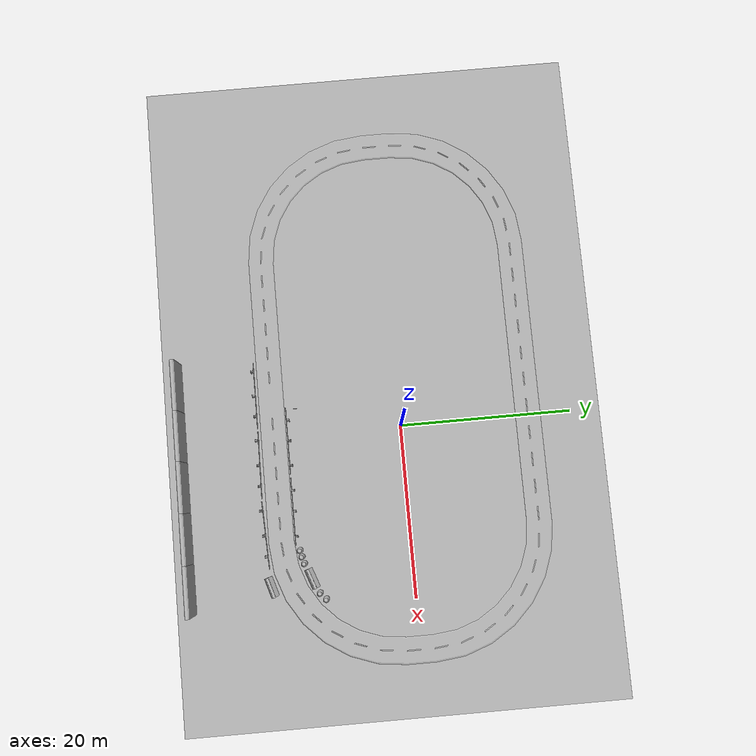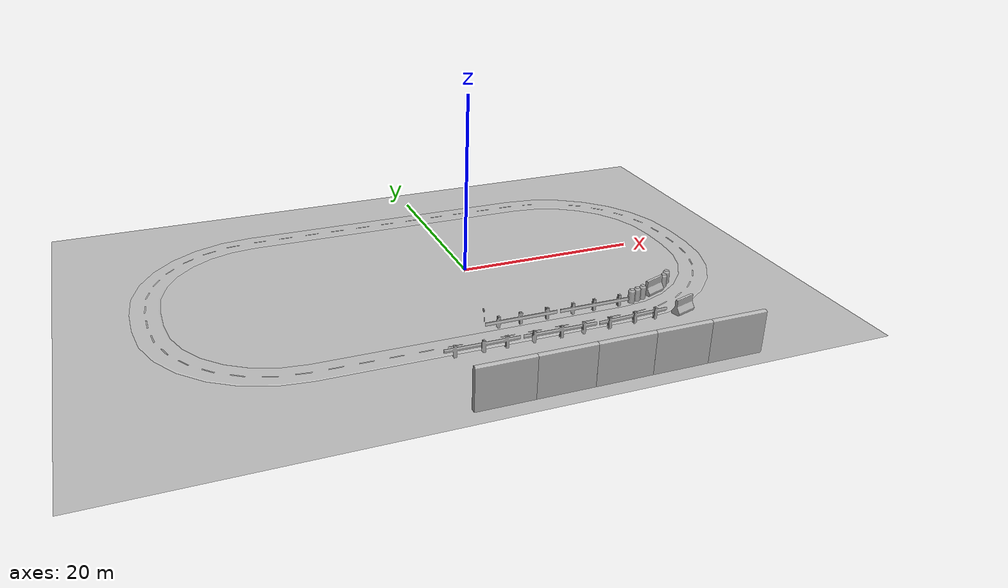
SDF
<sdf version="1.7">
 <world name="default">
  <model name="aws_robomaker_racetrack_CrashworthBucket_01_18">
   <frame name="aws_CrashworthBucket_01::__model__" attached_to="aws_CrashworthBucket_01::body">
    <pose relative_to="__model__">0 0 0 0 -0 0</pose>
   </frame>
   <link name="aws_CrashworthBucket_01::body">
    <pose relative_to="aws_CrashworthBucket_01::__model__">0 0 0 0 -0 0</pose>
    <inertial>
     <mass>5</mass>
     <inertia><ixx>1</ixx><ixy>0</ixy><ixz>0</ixz><iyy>1</iyy><iyz>0</iyz><izz>1</izz></inertia>
    </inertial>
    <visual name="visual">
     <geometry>
      <mesh>
       <uri>file://models/aws_robomaker_racetrack_CrashworthBucket_01/meshes/aws_CrashworthBucket_01_visual.DAE</uri>
      </mesh>
     </geometry>
     <material><shader type="pixel"><normal_map>__default__</normal_map></shader></material>
     <meta><layer>0</layer></meta>
    </visual>
    <collision name="collision_0">
     <geometry>
      <mesh>
       <uri>file://models/aws_robomaker_racetrack_CrashworthBucket_01/meshes/aws_CrashworthBucket_01_collision.DAE</uri>
       <scale>1 1 1</scale>
      </mesh>
     </geometry>
     <surface>
      <friction>
       <ode><mu>1</mu><mu2>1</mu2><fdir1>0 0 0</fdir1><slip1>0</slip1><slip2>0</slip2></ode>
       <torsional>
        <coefficient>1</coefficient>
        <patch_radius>0</patch_radius>
        <surface_radius>0</surface_radius>
        <use_patch_radius>1</use_patch_radius>
        <ode><slip>0</slip></ode>
       </torsional>
      </friction>
      <bounce><restitution_coefficient>0</restitution_coefficient><threshold>1e+06</threshold></bounce>
      <contact>
       <collide_without_contact>0</collide_without_contact>
       <collide_without_contact_bitmask>1</collide_without_contact_bitmask>
       <collide_bitmask>1</collide_bitmask>
       <ode>
        <soft_cfm>0</soft_cfm>
        <soft_erp>0.2</soft_erp>
        <kp>1e+13</kp>
        <kd>1</kd>
        <max_vel>0.01</max_vel>
        <min_depth>0</min_depth>
       </ode>
       <bullet>
        <split_impulse>1</split_impulse>
        <split_impulse_penetration_threshold>-0.01</split_impulse_penetration_threshold>
        <soft_cfm>0</soft_cfm>
        <soft_erp>0.2</soft_erp>
        <kp>1e+13</kp>
        <kd>1</kd>
       </bullet>
      </contact>
     </surface>
    </collision>
   </link>
   <static>1</static>
   <pose>19.1471 -10.2467 0.054 0 -0 0</pose>
  </model>
  <model name="aws_robomaker_racetrack_CrashworthBucket_01_19">
   <frame name="aws_CrashworthBucket_01::__model__" attached_to="aws_CrashworthBucket_01::body">
    <pose relative_to="__model__">0 0 0 0 -0 0</pose>
   </frame>
   <link name="aws_CrashworthBucket_01::body">
    <pose relative_to="aws_CrashworthBucket_01::__model__">0 0 0 0 -0 0</pose>
    <inertial>
     <mass>5</mass>
     <inertia><ixx>1</ixx><ixy>0</ixy><ixz>0</ixz><iyy>1</iyy><iyz>0</iyz><izz>1</izz></inertia>
    </inertial>
    <visual name="visual">
     <geometry>
      <mesh>
       <uri>file://models/aws_robomaker_racetrack_CrashworthBucket_01/meshes/aws_CrashworthBucket_01_visual.DAE</uri>
      </mesh>
     </geometry>
     <material><shader type="pixel"><normal_map>__default__</normal_map></shader></material>
     <meta><layer>0</layer></meta>
    </visual>
    <collision name="collision_0">
     <geometry>
      <mesh>
       <uri>file://models/aws_robomaker_racetrack_CrashworthBucket_01/meshes/aws_CrashworthBucket_01_collision.DAE</uri>
       <scale>1 1 1</scale>
      </mesh>
     </geometry>
     <surface>
      <friction>
       <ode><mu>1</mu><mu2>1</mu2><fdir1>0 0 0</fdir1><slip1>0</slip1><slip2>0</slip2></ode>
       <torsional>
        <coefficient>1</coefficient>
        <patch_radius>0</patch_radius>
        <surface_radius>0</surface_radius>
        <use_patch_radius>1</use_patch_radius>
        <ode><slip>0</slip></ode>
       </torsional>
      </friction>
      <bounce><restitution_coefficient>0</restitution_coefficient><threshold>1e+06</threshold></bounce>
      <contact>
       <collide_without_contact>0</collide_without_contact>
       <collide_without_contact_bitmask>1</collide_without_contact_bitmask>
       <collide_bitmask>1</collide_bitmask>
       <ode>
        <soft_cfm>0</soft_cfm>
        <soft_erp>0.2</soft_erp>
        <kp>1e+13</kp>
        <kd>1</kd>
        <max_vel>0.01</max_vel>
        <min_depth>0</min_depth>
       </ode>
       <bullet>
        <split_impulse>1</split_impulse>
        <split_impulse_penetration_threshold>-0.01</split_impulse_penetration_threshold>
        <soft_cfm>0</soft_cfm>
        <soft_erp>0.2</soft_erp>
        <kp>1e+13</kp>
        <kd>1</kd>
       </bullet>
      </contact>
     </surface>
    </collision>
   </link>
   <static>1</static>
   <pose>18.3999 -10.9106 0.054 0 -0 0</pose>
  </model>
  <model name="aws_robomaker_racetrack_CrashworthBucket_01_22">
   <frame name="aws_CrashworthBucket_01::__model__" attached_to="aws_CrashworthBucket_01::body">
    <pose relative_to="__model__">0 0 0 0 -0 0</pose>
   </frame>
   <link name="aws_CrashworthBucket_01::body">
    <pose relative_to="aws_CrashworthBucket_01::__model__">0 0 0 0 -0 0</pose>
    <inertial>
     <mass>5</mass>
     <inertia><ixx>1</ixx><ixy>0</ixy><ixz>0</ixz><iyy>1</iyy><iyz>0</iyz><izz>1</izz></inertia>
    </inertial>
    <visual name="visual">
     <geometry>
      <mesh>
       <uri>file://models/aws_robomaker_racetrack_CrashworthBucket_01/meshes/aws_CrashworthBucket_01_visual.DAE</uri>
      </mesh>
     </geometry>
     <material><shader type="pixel"><normal_map>__default__</normal_map></shader></material>
     <meta><layer>0</layer></meta>
    </visual>
    <collision name="collision_0">
     <geometry>
      <mesh>
       <uri>file://models/aws_robomaker_racetrack_CrashworthBucket_01/meshes/aws_CrashworthBucket_01_collision.DAE</uri>
       <scale>1 1 1</scale>
      </mesh>
     </geometry>
     <surface>
      <friction>
       <ode><mu>1</mu><mu2>1</mu2><fdir1>0 0 0</fdir1><slip1>0</slip1><slip2>0</slip2></ode>
       <torsional>
        <coefficient>1</coefficient>
        <patch_radius>0</patch_radius>
        <surface_radius>0</surface_radius>
        <use_patch_radius>1</use_patch_radius>
        <ode><slip>0</slip></ode>
       </torsional>
      </friction>
      <bounce><restitution_coefficient>0</restitution_coefficient><threshold>1e+06</threshold></bounce>
      <contact>
       <collide_without_contact>0</collide_without_contact>
       <collide_without_contact_bitmask>1</collide_without_contact_bitmask>
       <collide_bitmask>1</collide_bitmask>
       <ode>
        <soft_cfm>0</soft_cfm>
        <soft_erp>0.2</soft_erp>
        <kp>1e+13</kp>
        <kd>1</kd>
        <max_vel>0.01</max_vel>
        <min_depth>0</min_depth>
       </ode>
       <bullet>
        <split_impulse>1</split_impulse>
        <split_impulse_penetration_threshold>-0.01</split_impulse_penetration_threshold>
        <soft_cfm>0</soft_cfm>
        <soft_erp>0.2</soft_erp>
        <kp>1e+13</kp>
        <kd>1</kd>
       </bullet>
      </contact>
     </surface>
    </collision>
   </link>
   <static>1</static>
   <pose>14.1427 -12.6734 0.054 0 -0 0</pose>
  </model>
  <model name="aws_robomaker_racetrack_CrashworthBucket_01_23">
   <frame name="aws_CrashworthBucket_01::__model__" attached_to="aws_CrashworthBucket_01::body">
    <pose relative_to="__model__">0 0 0 0 -0 0</pose>
   </frame>
   <link name="aws_CrashworthBucket_01::body">
    <pose relative_to="aws_CrashworthBucket_01::__model__">0 0 0 0 -0 0</pose>
    <inertial>
     <mass>5</mass>
     <inertia><ixx>1</ixx><ixy>0</ixy><ixz>0</ixz><iyy>1</iyy><iyz>0</iyz><izz>1</izz></inertia>
    </inertial>
    <visual name="visual">
     <geometry>
      <mesh>
       <uri>file://models/aws_robomaker_racetrack_CrashworthBucket_01/meshes/aws_CrashworthBucket_01_visual.DAE</uri>
      </mesh>
     </geometry>
     <material><shader type="pixel"><normal_map>__default__</normal_map></shader></material>
     <meta><layer>0</layer></meta>
    </visual>
    <collision name="collision_0">
     <geometry>
      <mesh>
       <uri>file://models/aws_robomaker_racetrack_CrashworthBucket_01/meshes/aws_CrashworthBucket_01_collision.DAE</uri>
       <scale>1 1 1</scale>
      </mesh>
     </geometry>
     <surface>
      <friction>
       <ode><mu>1</mu><mu2>1</mu2><fdir1>0 0 0</fdir1><slip1>0</slip1><slip2>0</slip2></ode>
       <torsional>
        <coefficient>1</coefficient>
        <patch_radius>0</patch_radius>
        <surface_radius>0</surface_radius>
        <use_patch_radius>1</use_patch_radius>
        <ode><slip>0</slip></ode>
       </torsional>
      </friction>
      <bounce><restitution_coefficient>0</restitution_coefficient><threshold>1e+06</threshold></bounce>
      <contact>
       <collide_without_contact>0</collide_without_contact>
       <collide_without_contact_bitmask>1</collide_without_contact_bitmask>
       <collide_bitmask>1</collide_bitmask>
       <ode>
        <soft_cfm>0</soft_cfm>
        <soft_erp>0.2</soft_erp>
        <kp>1e+13</kp>
        <kd>1</kd>
        <max_vel>0.01</max_vel>
        <min_depth>0</min_depth>
       </ode>
       <bullet>
        <split_impulse>1</split_impulse>
        <split_impulse_penetration_threshold>-0.01</split_impulse_penetration_threshold>
        <soft_cfm>0</soft_cfm>
        <soft_erp>0.2</soft_erp>
        <kp>1e+13</kp>
        <kd>1</kd>
       </bullet>
      </contact>
     </surface>
    </collision>
   </link>
   <static>1</static>
   <pose>14.9254 -12.4456 0.054 0 -0 0</pose>
  </model>
  <model name="aws_robomaker_racetrack_CrashworthBucket_01_25">
   <frame name="aws_CrashworthBucket_01::__model__" attached_to="aws_CrashworthBucket_01::body">
    <pose relative_to="__model__">0 0 0 0 -0 0</pose>
   </frame>
   <link name="aws_CrashworthBucket_01::body">
    <pose relative_to="aws_CrashworthBucket_01::__model__">0 0 0 0 -0 0</pose>
    <inertial>
     <mass>5</mass>
     <inertia><ixx>1</ixx><ixy>0</ixy><ixz>0</ixz><iyy>1</iyy><iyz>0</iyz><izz>1</izz></inertia>
    </inertial>
    <visual name="visual">
     <geometry>
      <mesh>
       <uri>file://models/aws_robomaker_racetrack_CrashworthBucket_01/meshes/aws_CrashworthBucket_01_visual.DAE</uri>
      </mesh>
     </geometry>
     <material><shader type="pixel"><normal_map>__default__</normal_map></shader></material>
     <meta><layer>0</layer></meta>
    </visual>
    <collision name="collision_0">
     <geometry>
      <mesh>
       <uri>file://models/aws_robomaker_racetrack_CrashworthBucket_01/meshes/aws_CrashworthBucket_01_collision.DAE</uri>
       <scale>1 1 1</scale>
      </mesh>
     </geometry>
     <surface>
      <friction>
       <ode><mu>1</mu><mu2>1</mu2><fdir1>0 0 0</fdir1><slip1>0</slip1><slip2>0</slip2></ode>
       <torsional>
        <coefficient>1</coefficient>
        <patch_radius>0</patch_radius>
        <surface_radius>0</surface_radius>
        <use_patch_radius>1</use_patch_radius>
        <ode><slip>0</slip></ode>
       </torsional>
      </friction>
      <bounce><restitution_coefficient>0</restitution_coefficient><threshold>1e+06</threshold></bounce>
      <contact>
       <collide_without_contact>0</collide_without_contact>
       <collide_without_contact_bitmask>1</collide_without_contact_bitmask>
       <collide_bitmask>1</collide_bitmask>
       <ode>
        <soft_cfm>0</soft_cfm>
        <soft_erp>0.2</soft_erp>
        <kp>1e+13</kp>
        <kd>1</kd>
        <max_vel>0.01</max_vel>
        <min_depth>0</min_depth>
       </ode>
       <bullet>
        <split_impulse>1</split_impulse>
        <split_impulse_penetration_threshold>-0.01</split_impulse_penetration_threshold>
        <soft_cfm>0</soft_cfm>
        <soft_erp>0.2</soft_erp>
        <kp>1e+13</kp>
        <kd>1</kd>
       </bullet>
      </contact>
     </surface>
    </collision>
   </link>
   <static>1</static>
   <pose>13.3868 -12.8508 0.054 0 -0 0</pose>
  </model>
  <model name="aws_robomaker_racetrack_Fence_01_05">
   <frame name="aws_Fence_01::__model__" attached_to="aws_Fence_01::body">
    <pose relative_to="__model__">0 0 0 0 -0 0</pose>
   </frame>
   <link name="aws_Fence_01::body">
    <pose relative_to="aws_Fence_01::__model__">0 0 0 0 -0 0</pose>
    <inertial>
     <mass>5</mass>
     <inertia><ixx>1</ixx><ixy>0</ixy><ixz>0</ixz><iyy>1</iyy><iyz>0</iyz><izz>1</izz></inertia>
    </inertial>
    <visual name="visual">
     <geometry>
      <mesh><uri>file://models/aws_robomaker_racetrack_Fence_01/meshes/aws_Fence_01_visual.DAE</uri></mesh>
     </geometry>
     <material><shader type="pixel"><normal_map>__default__</normal_map></shader></material>
     <meta><layer>0</layer></meta>
    </visual>
    <collision name="collision_0">
     <geometry>
      <mesh>
       <uri>file://models/aws_robomaker_racetrack_Fence_01/meshes/aws_Fence_01_collision.DAE</uri>
       <scale>1 1 1</scale>
      </mesh>
     </geometry>
     <surface>
      <friction>
       <ode><mu>1</mu><mu2>1</mu2><fdir1>0 0 0</fdir1><slip1>0</slip1><slip2>0</slip2></ode>
       <torsional>
        <coefficient>1</coefficient>
        <patch_radius>0</patch_radius>
        <surface_radius>0</surface_radius>
        <use_patch_radius>1</use_patch_radius>
        <ode><slip>0</slip></ode>
       </torsional>
      </friction>
      <bounce><restitution_coefficient>0</restitution_coefficient><threshold>1e+06</threshold></bounce>
      <contact>
       <collide_without_contact>0</collide_without_contact>
       <collide_without_contact_bitmask>1</collide_without_contact_bitmask>
       <collide_bitmask>1</collide_bitmask>
       <ode>
        <soft_cfm>0</soft_cfm>
        <soft_erp>0.2</soft_erp>
        <kp>1e+13</kp>
        <kd>1</kd>
        <max_vel>0.01</max_vel>
        <min_depth>0</min_depth>
       </ode>
       <bullet>
        <split_impulse>1</split_impulse>
        <split_impulse_penetration_threshold>-0.01</split_impulse_penetration_threshold>
        <soft_cfm>0</soft_cfm>
        <soft_erp>0.2</soft_erp>
        <kp>1e+13</kp>
        <kd>1</kd>
       </bullet>
      </contact>
     </surface>
    </collision>
   </link>
   <static>1</static>
   <pose>-4.88088 -16.8495 0.054 0 0 -1.57272</pose>
  </model>
  <model name="aws_robomaker_racetrack_Fence_01_06">
   <frame name="aws_Fence_01::__model__" attached_to="aws_Fence_01::body">
    <pose relative_to="__model__">0 0 0 0 -0 0</pose>
   </frame>
   <link name="aws_Fence_01::body">
    <pose relative_to="aws_Fence_01::__model__">0 0 0 0 -0 0</pose>
    <inertial>
     <mass>5</mass>
     <inertia><ixx>1</ixx><ixy>0</ixy><ixz>0</ixz><iyy>1</iyy><iyz>0</iyz><izz>1</izz></inertia>
    </inertial>
    <visual name="visual">
     <geometry>
      <mesh><uri>file://models/aws_robomaker_racetrack_Fence_01/meshes/aws_Fence_01_visual.DAE</uri></mesh>
     </geometry>
     <material><shader type="pixel"><normal_map>__default__</normal_map></shader></material>
     <meta><layer>0</layer></meta>
    </visual>
    <collision name="collision_0">
     <geometry>
      <mesh>
       <uri>file://models/aws_robomaker_racetrack_Fence_01/meshes/aws_Fence_01_collision.DAE</uri>
       <scale>1 1 1</scale>
      </mesh>
     </geometry>
     <surface>
      <friction>
       <ode><mu>1</mu><mu2>1</mu2><fdir1>0 0 0</fdir1><slip1>0</slip1><slip2>0</slip2></ode>
       <torsional>
        <coefficient>1</coefficient>
        <patch_radius>0</patch_radius>
        <surface_radius>0</surface_radius>
        <use_patch_radius>1</use_patch_radius>
        <ode><slip>0</slip></ode>
       </torsional>
      </friction>
      <bounce><restitution_coefficient>0</restitution_coefficient><threshold>1e+06</threshold></bounce>
      <contact>
       <collide_without_contact>0</collide_without_contact>
       <collide_without_contact_bitmask>1</collide_without_contact_bitmask>
       <collide_bitmask>1</collide_bitmask>
       <ode>
        <soft_cfm>0</soft_cfm>
        <soft_erp>0.2</soft_erp>
        <kp>1e+13</kp>
        <kd>1</kd>
        <max_vel>0.01</max_vel>
        <min_depth>0</min_depth>
       </ode>
       <bullet>
        <split_impulse>1</split_impulse>
        <split_impulse_penetration_threshold>-0.01</split_impulse_penetration_threshold>
        <soft_cfm>0</soft_cfm>
        <soft_erp>0.2</soft_erp>
        <kp>1e+13</kp>
        <kd>1</kd>
       </bullet>
      </contact>
     </surface>
    </collision>
   </link>
   <static>1</static>
   <pose>3.24763 -16.8996 0.054 0 0 -1.58165</pose>
  </model>
  <model name="aws_robomaker_racetrack_Fence_01_07">
   <frame name="aws_Fence_01::__model__" attached_to="aws_Fence_01::body">
    <pose relative_to="__model__">0 0 0 0 -0 0</pose>
   </frame>
   <link name="aws_Fence_01::body">
    <pose relative_to="aws_Fence_01::__model__">0 0 0 0 -0 0</pose>
    <inertial>
     <mass>5</mass>
     <inertia><ixx>1</ixx><ixy>0</ixy><ixz>0</ixz><iyy>1</iyy><iyz>0</iyz><izz>1</izz></inertia>
    </inertial>
    <visual name="visual">
     <geometry>
      <mesh><uri>file://models/aws_robomaker_racetrack_Fence_01/meshes/aws_Fence_01_visual.DAE</uri></mesh>
     </geometry>
     <material><shader type="pixel"><normal_map>__default__</normal_map></shader></material>
     <meta><layer>0</layer></meta>
    </visual>
    <collision name="collision_0">
     <geometry>
      <mesh>
       <uri>file://models/aws_robomaker_racetrack_Fence_01/meshes/aws_Fence_01_collision.DAE</uri>
       <scale>1 1 1</scale>
      </mesh>
     </geometry>
     <surface>
      <friction>
       <ode><mu>1</mu><mu2>1</mu2><fdir1>0 0 0</fdir1><slip1>0</slip1><slip2>0</slip2></ode>
       <torsional>
        <coefficient>1</coefficient>
        <patch_radius>0</patch_radius>
        <surface_radius>0</surface_radius>
        <use_patch_radius>1</use_patch_radius>
        <ode><slip>0</slip></ode>
       </torsional>
      </friction>
      <bounce><restitution_coefficient>0</restitution_coefficient><threshold>1e+06</threshold></bounce>
      <contact>
       <collide_without_contact>0</collide_without_contact>
       <collide_without_contact_bitmask>1</collide_without_contact_bitmask>
       <collide_bitmask>1</collide_bitmask>
       <ode>
        <soft_cfm>0</soft_cfm>
        <soft_erp>0.2</soft_erp>
        <kp>1e+13</kp>
        <kd>1</kd>
        <max_vel>0.01</max_vel>
        <min_depth>0</min_depth>
       </ode>
       <bullet>
        <split_impulse>1</split_impulse>
        <split_impulse_penetration_threshold>-0.01</split_impulse_penetration_threshold>
        <soft_cfm>0</soft_cfm>
        <soft_erp>0.2</soft_erp>
        <kp>1e+13</kp>
        <kd>1</kd>
       </bullet>
      </contact>
     </surface>
    </collision>
   </link>
   <static>1</static>
   <pose>11.3643 -16.8139 0.054 0 0 -1.5255</pose>
  </model>
  <model name="aws_robomaker_racetrack_Fence_01_10">
   <frame name="aws_Fence_01::__model__" attached_to="aws_Fence_01::body">
    <pose relative_to="__model__">0 0 0 0 -0 0</pose>
   </frame>
   <link name="aws_Fence_01::body">
    <pose relative_to="aws_Fence_01::__model__">0 0 0 0 -0 0</pose>
    <inertial>
     <mass>5</mass>
     <inertia><ixx>1</ixx><ixy>0</ixy><ixz>0</ixz><iyy>1</iyy><iyz>0</iyz><izz>1</izz></inertia>
    </inertial>
    <visual name="visual">
     <geometry>
      <mesh><uri>file://models/aws_robomaker_racetrack_Fence_01/meshes/aws_Fence_01_visual.DAE</uri></mesh>
     </geometry>
     <material><shader type="pixel"><normal_map>__default__</normal_map></shader></material>
     <meta><layer>0</layer></meta>
    </visual>
    <collision name="collision_0">
     <geometry>
      <mesh>
       <uri>file://models/aws_robomaker_racetrack_Fence_01/meshes/aws_Fence_01_collision.DAE</uri>
       <scale>1 1 1</scale>
      </mesh>
     </geometry>
     <surface>
      <friction>
       <ode><mu>1</mu><mu2>1</mu2><fdir1>0 0 0</fdir1><slip1>0</slip1><slip2>0</slip2></ode>
       <torsional>
        <coefficient>1</coefficient>
        <patch_radius>0</patch_radius>
        <surface_radius>0</surface_radius>
        <use_patch_radius>1</use_patch_radius>
        <ode><slip>0</slip></ode>
       </torsional>
      </friction>
      <bounce><restitution_coefficient>0</restitution_coefficient><threshold>1e+06</threshold></bounce>
      <contact>
       <collide_without_contact>0</collide_without_contact>
       <collide_without_contact_bitmask>1</collide_without_contact_bitmask>
       <collide_bitmask>1</collide_bitmask>
       <ode>
        <soft_cfm>0</soft_cfm>
        <soft_erp>0.2</soft_erp>
        <kp>1e+13</kp>
        <kd>1</kd>
        <max_vel>0.01</max_vel>
        <min_depth>0</min_depth>
       </ode>
       <bullet>
        <split_impulse>1</split_impulse>
        <split_impulse_penetration_threshold>-0.01</split_impulse_penetration_threshold>
        <soft_cfm>0</soft_cfm>
        <soft_erp>0.2</soft_erp>
        <kp>1e+13</kp>
        <kd>1</kd>
       </bullet>
      </contact>
     </surface>
    </collision>
   </link>
   <static>1</static>
   <pose>0.720398 -13.1346 0.054671 0 -0 1.57158</pose>
  </model>
  <model name="aws_robomaker_racetrack_Fence_01_11">
   <frame name="aws_Fence_01::__model__" attached_to="aws_Fence_01::body">
    <pose relative_to="__model__">0 0 0 0 -0 0</pose>
   </frame>
   <link name="aws_Fence_01::body">
    <pose relative_to="aws_Fence_01::__model__">0 0 0 0 -0 0</pose>
    <inertial>
     <mass>5</mass>
     <inertia><ixx>1</ixx><ixy>0</ixy><ixz>0</ixz><iyy>1</iyy><iyz>0</iyz><izz>1</izz></inertia>
    </inertial>
    <visual name="visual">
     <geometry>
      <mesh><uri>file://models/aws_robomaker_racetrack_Fence_01/meshes/aws_Fence_01_visual.DAE</uri></mesh>
     </geometry>
     <material><shader type="pixel"><normal_map>__default__</normal_map></shader></material>
     <meta><layer>0</layer></meta>
    </visual>
    <collision name="collision_0">
     <geometry>
      <mesh>
       <uri>file://models/aws_robomaker_racetrack_Fence_01/meshes/aws_Fence_01_collision.DAE</uri>
       <scale>1 1 1</scale>
      </mesh>
     </geometry>
     <surface>
      <friction>
       <ode><mu>1</mu><mu2>1</mu2><fdir1>0 0 0</fdir1><slip1>0</slip1><slip2>0</slip2></ode>
       <torsional>
        <coefficient>1</coefficient>
        <patch_radius>0</patch_radius>
        <surface_radius>0</surface_radius>
        <use_patch_radius>1</use_patch_radius>
        <ode><slip>0</slip></ode>
       </torsional>
      </friction>
      <bounce><restitution_coefficient>0</restitution_coefficient><threshold>1e+06</threshold></bounce>
      <contact>
       <collide_without_contact>0</collide_without_contact>
       <collide_without_contact_bitmask>1</collide_without_contact_bitmask>
       <collide_bitmask>1</collide_bitmask>
       <ode>
        <soft_cfm>0</soft_cfm>
        <soft_erp>0.2</soft_erp>
        <kp>1e+13</kp>
        <kd>1</kd>
        <max_vel>0.01</max_vel>
        <min_depth>0</min_depth>
       </ode>
       <bullet>
        <split_impulse>1</split_impulse>
        <split_impulse_penetration_threshold>-0.01</split_impulse_penetration_threshold>
        <soft_cfm>0</soft_cfm>
        <soft_erp>0.2</soft_erp>
        <kp>1e+13</kp>
        <kd>1</kd>
       </bullet>
      </contact>
     </surface>
    </collision>
   </link>
   <static>1</static>
   <pose>8.89898 -13.1346 0.054638 0 -0 1.57268</pose>
  </model>
  <model name="aws_robomaker_racetrack_StonePier_01_17">
   <frame name="aws_StonePier_01::__model__" attached_to="aws_StonePier_01::body">
    <pose relative_to="__model__">0 0 0 0 -0 0</pose>
   </frame>
   <link name="aws_StonePier_01::body">
    <pose relative_to="aws_StonePier_01::__model__">0 0 0 0 -0 0</pose>
    <inertial>
     <mass>10</mass>
     <inertia><ixx>0</ixx><ixy>0</ixy><ixz>0</ixz><iyy>0</iyy><iyz>0</iyz><izz>0</izz></inertia>
    </inertial>
    <visual name="visual">
     <geometry>
      <mesh><uri>file://models/aws_robomaker_racetrack_StonePier_01/meshes/aws_StonePier_01_visual.DAE</uri></mesh>
     </geometry>
     <material><shader type="pixel"><normal_map>__default__</normal_map></shader></material>
     <meta><layer>0</layer></meta>
    </visual>
    <collision name="collision_0">
     <geometry>
      <mesh>
       <uri>file://models/aws_robomaker_racetrack_StonePier_01/meshes/aws_StonePier_01_collision.DAE</uri>
       <scale>1 1 1</scale>
      </mesh>
     </geometry>
     <surface>
      <friction>
       <ode><mu>1</mu><mu2>1</mu2><fdir1>0 0 0</fdir1><slip1>0</slip1><slip2>0</slip2></ode>
       <torsional>
        <coefficient>1</coefficient>
        <patch_radius>0</patch_radius>
        <surface_radius>0</surface_radius>
        <use_patch_radius>1</use_patch_radius>
        <ode><slip>0</slip></ode>
       </torsional>
      </friction>
      <bounce><restitution_coefficient>0</restitution_coefficient><threshold>1e+06</threshold></bounce>
      <contact>
       <collide_without_contact>0</collide_without_contact>
       <collide_without_contact_bitmask>1</collide_without_contact_bitmask>
       <collide_bitmask>1</collide_bitmask>
       <ode>
        <soft_cfm>0</soft_cfm>
        <soft_erp>0.2</soft_erp>
        <kp>1e+13</kp>
        <kd>1</kd>
        <max_vel>0.01</max_vel>
        <min_depth>0</min_depth>
       </ode>
       <bullet>
        <split_impulse>1</split_impulse>
        <split_impulse_penetration_threshold>-0.01</split_impulse_penetration_threshold>
        <soft_cfm>0</soft_cfm>
        <soft_erp>0.2</soft_erp>
        <kp>1e+13</kp>
        <kd>1</kd>
       </bullet>
      </contact>
     </surface>
    </collision>
   </link>
   <static>1</static>
   <pose>16.7061 -11.7058 0.054 0 0 -2.7953</pose>
  </model>
  <model name="aws_robomaker_racetrack_StonePier_01_21">
   <frame name="aws_StonePier_01::__model__" attached_to="aws_StonePier_01::body">
    <pose relative_to="__model__">0 0 0 0 -0 0</pose>
   </frame>
   <link name="aws_StonePier_01::body">
    <pose relative_to="aws_StonePier_01::__model__">0 0 0 0 -0 0</pose>
    <inertial>
     <mass>10</mass>
     <inertia><ixx>0</ixx><ixy>0</ixy><ixz>0</ixz><iyy>0</iyy><iyz>0</iyz><izz>0</izz></inertia>
    </inertial>
    <visual name="visual">
     <geometry>
      <mesh><uri>file://models/aws_robomaker_racetrack_StonePier_01/meshes/aws_StonePier_01_visual.DAE</uri></mesh>
     </geometry>
     <material><shader type="pixel"><normal_map>__default__</normal_map></shader></material>
     <meta><layer>0</layer></meta>
    </visual>
    <collision name="collision_0">
     <geometry>
      <mesh>
       <uri>file://models/aws_robomaker_racetrack_StonePier_01/meshes/aws_StonePier_01_collision.DAE</uri>
       <scale>1 1 1</scale>
      </mesh>
     </geometry>
     <surface>
      <friction>
       <ode><mu>1</mu><mu2>1</mu2><fdir1>0 0 0</fdir1><slip1>0</slip1><slip2>0</slip2></ode>
       <torsional>
        <coefficient>1</coefficient>
        <patch_radius>0</patch_radius>
        <surface_radius>0</surface_radius>
        <use_patch_radius>1</use_patch_radius>
        <ode><slip>0</slip></ode>
       </torsional>
      </friction>
      <bounce><restitution_coefficient>0</restitution_coefficient><threshold>1e+06</threshold></bounce>
      <contact>
       <collide_without_contact>0</collide_without_contact>
       <collide_without_contact_bitmask>1</collide_without_contact_bitmask>
       <collide_bitmask>1</collide_bitmask>
       <ode>
        <soft_cfm>0</soft_cfm>
        <soft_erp>0.2</soft_erp>
        <kp>1e+13</kp>
        <kd>1</kd>
        <max_vel>0.01</max_vel>
        <min_depth>0</min_depth>
       </ode>
       <bullet>
        <split_impulse>1</split_impulse>
        <split_impulse_penetration_threshold>-0.01</split_impulse_penetration_threshold>
        <soft_cfm>0</soft_cfm>
        <soft_erp>0.2</soft_erp>
        <kp>1e+13</kp>
        <kd>1</kd>
       </bullet>
      </contact>
     </surface>
    </collision>
   </link>
   <static>1</static>
   <pose>17.2914 -16.4156 0.054 0 -0 0.298911</pose>
  </model>
  <model name="aws_robomaker_racetrack_StopSign_01_00">
   <frame name="aws_StopSign_01::__model__" attached_to="aws_StopSign_01::body">
    <pose relative_to="__model__">0 0 0 0 -0 0</pose>
   </frame>
   <link name="aws_StopSign_01::body">
    <pose relative_to="aws_StopSign_01::__model__">0 0 0 0 -0 0</pose>
    <inertial>
     <mass>2</mass>
     <inertia><ixx>1</ixx><ixy>0</ixy><ixz>0</ixz><iyy>1</iyy><iyz>0</iyz><izz>1</izz></inertia>
    </inertial>
    <visual name="visual">
     <geometry>
      <mesh><uri>file://models/aws_robomaker_racetrack_StopSign_01/meshes/aws_StopSign_01_visual.DAE</uri></mesh>
     </geometry>
     <material><shader type="pixel"><normal_map>__default__</normal_map></shader></material>
     <meta><layer>0</layer></meta>
    </visual>
    <collision name="collision_0">
     <geometry>
      <mesh>
       <uri>file://models/aws_robomaker_racetrack_StopSign_01/meshes/aws_StopSign_01_collision.DAE</uri>
       <scale>1 1 1</scale>
      </mesh>
     </geometry>
     <surface>
      <friction>
       <ode><mu>1</mu><mu2>1</mu2><fdir1>0 0 0</fdir1><slip1>0</slip1><slip2>0</slip2></ode>
       <torsional>
        <coefficient>1</coefficient>
        <patch_radius>0</patch_radius>
        <surface_radius>0</surface_radius>
        <use_patch_radius>1</use_patch_radius>
        <ode><slip>0</slip></ode>
       </torsional>
      </friction>
      <bounce><restitution_coefficient>0</restitution_coefficient><threshold>1e+06</threshold></bounce>
      <contact>
       <collide_without_contact>0</collide_without_contact>
       <collide_without_contact_bitmask>1</collide_without_contact_bitmask>
       <collide_bitmask>1</collide_bitmask>
       <ode>
        <soft_cfm>0</soft_cfm>
        <soft_erp>0.2</soft_erp>
        <kp>1e+13</kp>
        <kd>1</kd>
        <max_vel>0.01</max_vel>
        <min_depth>0</min_depth>
       </ode>
       <bullet>
        <split_impulse>1</split_impulse>
        <split_impulse_penetration_threshold>-0.01</split_impulse_penetration_threshold>
        <soft_cfm>0</soft_cfm>
        <soft_erp>0.2</soft_erp>
        <kp>1e+13</kp>
        <kd>1</kd>
       </bullet>
      </contact>
     </surface>
    </collision>
   </link>
   <static>1</static>
   <pose>-2.7487 -12.1054 0.000775 0.075944 0.005053 -1.56731</pose>
  </model>
  <model name="aws_robomaker_racetrack_Track_05_00">
   <frame name="aws_Track_05::__model__" attached_to="aws_Track_05::body">
    <pose relative_to="__model__">0 0 0 0 -0 0</pose>
   </frame>
   <link name="aws_Track_05::body">
    <pose relative_to="aws_Track_05::__model__">0 0 0 0 -0 0</pose>
    <inertial>
     <mass>1000</mass>
     <inertia><ixx>1</ixx><ixy>0</ixy><ixz>0</ixz><iyy>1</iyy><iyz>0</iyz><izz>1</izz></inertia>
    </inertial>
    <visual name="visual">
     <geometry>
      <mesh><uri>file://models/aws_robomaker_racetrack_Track_05/meshes/aws_Track_05_visual.DAE</uri></mesh>
     </geometry>
     <material><shader type="pixel"><normal_map>__default__</normal_map></shader></material>
     <meta><layer>0</layer></meta>
    </visual>
    <collision name="collision_0">
     <geometry>
      <mesh>
       <uri>file://models/aws_robomaker_racetrack_Track_05/meshes/aws_Track_05_collision.DAE</uri>
       <scale>1 1 1</scale>
      </mesh>
     </geometry>
     <surface>
      <friction>
       <ode><mu>100</mu><mu2>50</mu2><fdir1>0 0 0</fdir1><slip1>0</slip1><slip2>0</slip2></ode>
       <torsional>
        <coefficient>1</coefficient>
        <patch_radius>0</patch_radius>
        <surface_radius>0</surface_radius>
        <use_patch_radius>1</use_patch_radius>
        <ode><slip>0</slip></ode>
       </torsional>
      </friction>
      <bounce><restitution_coefficient>0</restitution_coefficient><threshold>1e+06</threshold></bounce>
      <contact>
       <collide_without_contact>0</collide_without_contact>
       <collide_without_contact_bitmask>1</collide_without_contact_bitmask>
       <collide_bitmask>1</collide_bitmask>
       <ode>
        <soft_cfm>0</soft_cfm>
        <soft_erp>0.2</soft_erp>
        <kp>1e+13</kp>
        <kd>1</kd>
        <max_vel>0.01</max_vel>
        <min_depth>0</min_depth>
       </ode>
       <bullet>
        <split_impulse>1</split_impulse>
        <split_impulse_penetration_threshold>-0.01</split_impulse_penetration_threshold>
        <soft_cfm>0</soft_cfm>
        <soft_erp>0.2</soft_erp>
        <kp>1e+13</kp>
        <kd>1</kd>
       </bullet>
      </contact>
     </surface>
    </collision>
   </link>
   <static>1</static>
   <pose>0 0 0.051 0 -0 0</pose>
  </model>
  <model name="aws_robomaker_racetrack_Trackline_01_00">
   <frame name="aws_Trackline_01::__model__" attached_to="aws_Trackline_01::body">
    <pose relative_to="__model__">0 0 0 0 -0 0</pose>
   </frame>
   <link name="aws_Trackline_01::body">
    <pose relative_to="aws_Trackline_01::__model__">0 0 0 0 -0 0</pose>
    <inertial>
     <mass>0.5</mass>
     <inertia><ixx>1</ixx><ixy>0</ixy><ixz>0</ixz><iyy>1</iyy><iyz>0</iyz><izz>1</izz></inertia>
    </inertial>
    <visual name="visual">
     <geometry>
      <mesh><uri>file://models/aws_robomaker_racetrack_Trackline_01/meshes/aws_Trackline_01_visual.DAE</uri></mesh>
     </geometry>
     <material><shader type="pixel"><normal_map>__default__</normal_map></shader></material>
     <meta><layer>0</layer></meta>
    </visual>
    <collision name="collision_0">
     <geometry>
      <mesh>
       <uri>file://models/aws_robomaker_racetrack_Trackline_01/meshes/aws_Trackline_01_collision.DAE</uri>
       <scale>1 1 1</scale>
      </mesh>
     </geometry>
     <surface>
      <friction>
       <ode><mu>1</mu><mu2>1</mu2><fdir1>0 0 0</fdir1><slip1>0</slip1><slip2>0</slip2></ode>
       <torsional>
        <coefficient>1</coefficient>
        <patch_radius>0</patch_radius>
        <surface_radius>0</surface_radius>
        <use_patch_radius>1</use_patch_radius>
        <ode><slip>0</slip></ode>
       </torsional>
      </friction>
      <bounce><restitution_coefficient>0</restitution_coefficient><threshold>1e+06</threshold></bounce>
      <contact>
       <collide_without_contact>0</collide_without_contact>
       <collide_without_contact_bitmask>1</collide_without_contact_bitmask>
       <collide_bitmask>0</collide_bitmask>
       <ode>
        <soft_cfm>0</soft_cfm>
        <soft_erp>0.2</soft_erp>
        <kp>1e+13</kp>
        <kd>1</kd>
        <max_vel>0.01</max_vel>
        <min_depth>0</min_depth>
       </ode>
       <bullet>
        <split_impulse>1</split_impulse>
        <split_impulse_penetration_threshold>-0.01</split_impulse_penetration_threshold>
        <soft_cfm>0</soft_cfm>
        <soft_erp>0.2</soft_erp>
        <kp>1e+13</kp>
        <kd>1</kd>
       </bullet>
      </contact>
     </surface>
    </collision>
   </link>
   <static>1</static>
   <pose>-4.24539 0 0.102 0 -0 0</pose>
  </model>
  <model name="aws_robomaker_racetrack_Ground_01_00">
   <frame name="aws_Ground_01::__model__" attached_to="aws_Ground_01::body">
    <pose relative_to="__model__">0 0 0 0 -0 0</pose>
   </frame>
   <link name="aws_Ground_01::body">
    <pose relative_to="aws_Ground_01::__model__">0 0 0 0 -0 0</pose>
    <inertial>
     <mass>10000</mass>
     <inertia><ixx>0</ixx><ixy>0</ixy><ixz>0</ixz><iyy>0</iyy><iyz>0</iyz><izz>0</izz></inertia>
    </inertial>
    <visual name="visual">
     <geometry>
      <mesh>
       <uri>file://models/aws_robomaker_racetrack_Ground_01/meshes/aws_Ground_01_visual.DAE</uri>
       <scale>0.09 0.06 0.2</scale>
      </mesh>
     </geometry>
     <material><shader type="pixel"><normal_map>__default__</normal_map></shader></material>
     <meta><layer>0</layer></meta>
    </visual>
    <collision name="collision_0">
     <geometry>
      <mesh>
       <uri>file://models/aws_robomaker_racetrack_Ground_01/meshes/aws_Ground_01_collision.DAE</uri>
       <scale>0.2 0.2 0.2</scale>
      </mesh>
     </geometry>
     <surface>
      <friction>
       <ode><mu>1</mu><mu2>1</mu2><fdir1>0 0 0</fdir1><slip1>0</slip1><slip2>0</slip2></ode>
       <torsional>
        <coefficient>1</coefficient>
        <patch_radius>0</patch_radius>
        <surface_radius>0</surface_radius>
        <use_patch_radius>1</use_patch_radius>
        <ode><slip>0</slip></ode>
       </torsional>
      </friction>
      <bounce><restitution_coefficient>0</restitution_coefficient><threshold>1e+06</threshold></bounce>
      <contact>
       <collide_without_contact>0</collide_without_contact>
       <collide_without_contact_bitmask>1</collide_without_contact_bitmask>
       <collide_bitmask>65535</collide_bitmask>
       <ode>
        <soft_cfm>0</soft_cfm>
        <soft_erp>0.2</soft_erp>
        <kp>1e+13</kp>
        <kd>1</kd>
        <max_vel>0.01</max_vel>
        <min_depth>0</min_depth>
       </ode>
       <bullet>
        <split_impulse>1</split_impulse>
        <split_impulse_penetration_threshold>-0.01</split_impulse_penetration_threshold>
        <soft_cfm>0</soft_cfm>
        <soft_erp>0.2</soft_erp>
        <kp>1e+13</kp>
        <kd>1</kd>
       </bullet>
      </contact>
     </surface>
    </collision>
   </link>
   <static>1</static>
   <pose>-4.9 -2 0.05 0 -0 0</pose>
  </model>
  <model name="aws_robomaker_racetrack_Wall_01_14">
   <frame name="aws_Wall_01::__model__" attached_to="aws_Wall_01::body">
    <pose relative_to="__model__">0 0 0 0 -0 0</pose>
   </frame>
   <link name="aws_Wall_01::body">
    <pose relative_to="aws_Wall_01::__model__">0 0 0 0 -0 0</pose>
    <inertial>
     <mass>500</mass>
     <inertia><ixx>1</ixx><ixy>0</ixy><ixz>0</ixz><iyy>1</iyy><iyz>0</iyz><izz>1</izz></inertia>
    </inertial>
    <visual name="visual">
     <geometry>
      <mesh>
       <uri>file://models/aws_robomaker_racetrack_Wall_01/meshes/aws_Wall_01_visual.DAE</uri>
       <scale>2.59853 2.59853 2.59853</scale>
      </mesh>
     </geometry>
     <material><shader type="pixel"><normal_map>__default__</normal_map></shader></material>
     <meta><layer>1</layer></meta>
    </visual>
    <collision name="collision_0">
     <geometry>
      <mesh>
       <uri>file://models/aws_robomaker_racetrack_Wall_01/meshes/aws_Wall_01_collision.DAE</uri>
       <scale>2.59853 2.59853 2.59853</scale>
      </mesh>
     </geometry>
     <surface>
      <friction>
       <ode><mu>1</mu><mu2>1</mu2><fdir1>0 0 0</fdir1><slip1>0</slip1><slip2>0</slip2></ode>
       <torsional>
        <coefficient>1</coefficient>
        <patch_radius>0</patch_radius>
        <surface_radius>0</surface_radius>
        <use_patch_radius>1</use_patch_radius>
        <ode><slip>0</slip></ode>
       </torsional>
      </friction>
      <bounce><restitution_coefficient>0</restitution_coefficient><threshold>1e+06</threshold></bounce>
      <contact>
       <collide_without_contact>0</collide_without_contact>
       <collide_without_contact_bitmask>1</collide_without_contact_bitmask>
       <collide_bitmask>1</collide_bitmask>
       <ode>
        <soft_cfm>0</soft_cfm>
        <soft_erp>0.2</soft_erp>
        <kp>1e+13</kp>
        <kd>1</kd>
        <max_vel>0.01</max_vel>
        <min_depth>0</min_depth>
       </ode>
       <bullet>
        <split_impulse>1</split_impulse>
        <split_impulse_penetration_threshold>-0.01</split_impulse_penetration_threshold>
        <soft_cfm>0</soft_cfm>
        <soft_erp>0.2</soft_erp>
        <kp>1e+13</kp>
        <kd>1</kd>
       </bullet>
      </contact>
     </surface>
    </collision>
   </link>
   <static>1</static>
   <pose>-6.53417 -25.5081 0 0 -0 0</pose>
  </model>
  <model name="aws_robomaker_racetrack_Wall_01_15">
   <frame name="aws_Wall_01::__model__" attached_to="aws_Wall_01::body">
    <pose relative_to="__model__">0 0 0 0 -0 0</pose>
   </frame>
   <link name="aws_Wall_01::body">
    <pose relative_to="aws_Wall_01::__model__">0 0 0 0 -0 0</pose>
    <inertial>
     <mass>500</mass>
     <inertia><ixx>1</ixx><ixy>0</ixy><ixz>0</ixz><iyy>1</iyy><iyz>0</iyz><izz>1</izz></inertia>
    </inertial>
    <visual name="visual">
     <geometry>
      <mesh>
       <uri>file://models/aws_robomaker_racetrack_Wall_01/meshes/aws_Wall_01_visual.DAE</uri>
       <scale>2.59853 2.59853 2.59853</scale>
      </mesh>
     </geometry>
     <material><shader type="pixel"><normal_map>__default__</normal_map></shader></material>
     <meta><layer>1</layer></meta>
    </visual>
    <collision name="collision_0">
     <geometry>
      <mesh>
       <uri>file://models/aws_robomaker_racetrack_Wall_01/meshes/aws_Wall_01_collision.DAE</uri>
       <scale>2.59853 2.59853 2.59853</scale>
      </mesh>
     </geometry>
     <surface>
      <friction>
       <ode><mu>1</mu><mu2>1</mu2><fdir1>0 0 0</fdir1><slip1>0</slip1><slip2>0</slip2></ode>
       <torsional>
        <coefficient>1</coefficient>
        <patch_radius>0</patch_radius>
        <surface_radius>0</surface_radius>
        <use_patch_radius>1</use_patch_radius>
        <ode><slip>0</slip></ode>
       </torsional>
      </friction>
      <bounce><restitution_coefficient>0</restitution_coefficient><threshold>1e+06</threshold></bounce>
      <contact>
       <collide_without_contact>0</collide_without_contact>
       <collide_without_contact_bitmask>1</collide_without_contact_bitmask>
       <collide_bitmask>1</collide_bitmask>
       <ode>
        <soft_cfm>0</soft_cfm>
        <soft_erp>0.2</soft_erp>
        <kp>1e+13</kp>
        <kd>1</kd>
        <max_vel>0.01</max_vel>
        <min_depth>0</min_depth>
       </ode>
       <bullet>
        <split_impulse>1</split_impulse>
        <split_impulse_penetration_threshold>-0.01</split_impulse_penetration_threshold>
        <soft_cfm>0</soft_cfm>
        <soft_erp>0.2</soft_erp>
        <kp>1e+13</kp>
        <kd>1</kd>
       </bullet>
      </contact>
     </surface>
    </collision>
   </link>
   <static>1</static>
   <pose>-0.701372 -25.5056 0 0 -0 0</pose>
  </model>
  <model name="aws_robomaker_racetrack_Wall_01_16">
   <frame name="aws_Wall_01::__model__" attached_to="aws_Wall_01::body">
    <pose relative_to="__model__">0 0 0 0 -0 0</pose>
   </frame>
   <link name="aws_Wall_01::body">
    <pose relative_to="aws_Wall_01::__model__">0 0 0 0 -0 0</pose>
    <inertial>
     <mass>500</mass>
     <inertia><ixx>1</ixx><ixy>0</ixy><ixz>0</ixz><iyy>1</iyy><iyz>0</iyz><izz>1</izz></inertia>
    </inertial>
    <visual name="visual">
     <geometry>
      <mesh>
       <uri>file://models/aws_robomaker_racetrack_Wall_01/meshes/aws_Wall_01_visual.DAE</uri>
       <scale>2.59853 2.59853 2.59853</scale>
      </mesh>
     </geometry>
     <material><shader type="pixel"><normal_map>__default__</normal_map></shader></material>
     <meta><layer>1</layer></meta>
    </visual>
    <collision name="collision_0">
     <geometry>
      <mesh>
       <uri>file://models/aws_robomaker_racetrack_Wall_01/meshes/aws_Wall_01_collision.DAE</uri>
       <scale>2.59853 2.59853 2.59853</scale>
      </mesh>
     </geometry>
     <surface>
      <friction>
       <ode><mu>1</mu><mu2>1</mu2><fdir1>0 0 0</fdir1><slip1>0</slip1><slip2>0</slip2></ode>
       <torsional>
        <coefficient>1</coefficient>
        <patch_radius>0</patch_radius>
        <surface_radius>0</surface_radius>
        <use_patch_radius>1</use_patch_radius>
        <ode><slip>0</slip></ode>
       </torsional>
      </friction>
      <bounce><restitution_coefficient>0</restitution_coefficient><threshold>1e+06</threshold></bounce>
      <contact>
       <collide_without_contact>0</collide_without_contact>
       <collide_without_contact_bitmask>1</collide_without_contact_bitmask>
       <collide_bitmask>1</collide_bitmask>
       <ode>
        <soft_cfm>0</soft_cfm>
        <soft_erp>0.2</soft_erp>
        <kp>1e+13</kp>
        <kd>1</kd>
        <max_vel>0.01</max_vel>
        <min_depth>0</min_depth>
       </ode>
       <bullet>
        <split_impulse>1</split_impulse>
        <split_impulse_penetration_threshold>-0.01</split_impulse_penetration_threshold>
        <soft_cfm>0</soft_cfm>
        <soft_erp>0.2</soft_erp>
        <kp>1e+13</kp>
        <kd>1</kd>
       </bullet>
      </contact>
     </surface>
    </collision>
   </link>
   <static>1</static>
   <pose>5.12343 -25.507 0 0 -0 0</pose>
  </model>
  <model name="aws_robomaker_racetrack_Wall_01_17">
   <frame name="aws_Wall_01::__model__" attached_to="aws_Wall_01::body">
    <pose relative_to="__model__">0 0 0 0 -0 0</pose>
   </frame>
   <link name="aws_Wall_01::body">
    <pose relative_to="aws_Wall_01::__model__">0 0 0 0 -0 0</pose>
    <inertial>
     <mass>500</mass>
     <inertia><ixx>1</ixx><ixy>0</ixy><ixz>0</ixz><iyy>1</iyy><iyz>0</iyz><izz>1</izz></inertia>
    </inertial>
    <visual name="visual">
     <geometry>
      <mesh>
       <uri>file://models/aws_robomaker_racetrack_Wall_01/meshes/aws_Wall_01_visual.DAE</uri>
       <scale>2.59853 2.59853 2.59853</scale>
      </mesh>
     </geometry>
     <material><shader type="pixel"><normal_map>__default__</normal_map></shader></material>
     <meta><layer>1</layer></meta>
    </visual>
    <collision name="collision_0">
     <geometry>
      <mesh>
       <uri>file://models/aws_robomaker_racetrack_Wall_01/meshes/aws_Wall_01_collision.DAE</uri>
       <scale>2.59853 2.59853 2.59853</scale>
      </mesh>
     </geometry>
     <surface>
      <friction>
       <ode><mu>1</mu><mu2>1</mu2><fdir1>0 0 0</fdir1><slip1>0</slip1><slip2>0</slip2></ode>
       <torsional>
        <coefficient>1</coefficient>
        <patch_radius>0</patch_radius>
        <surface_radius>0</surface_radius>
        <use_patch_radius>1</use_patch_radius>
        <ode><slip>0</slip></ode>
       </torsional>
      </friction>
      <bounce><restitution_coefficient>0</restitution_coefficient><threshold>1e+06</threshold></bounce>
      <contact>
       <collide_without_contact>0</collide_without_contact>
       <collide_without_contact_bitmask>1</collide_without_contact_bitmask>
       <collide_bitmask>1</collide_bitmask>
       <ode>
        <soft_cfm>0</soft_cfm>
        <soft_erp>0.2</soft_erp>
        <kp>1e+13</kp>
        <kd>1</kd>
        <max_vel>0.01</max_vel>
        <min_depth>0</min_depth>
       </ode>
       <bullet>
        <split_impulse>1</split_impulse>
        <split_impulse_penetration_threshold>-0.01</split_impulse_penetration_threshold>
        <soft_cfm>0</soft_cfm>
        <soft_erp>0.2</soft_erp>
        <kp>1e+13</kp>
        <kd>1</kd>
       </bullet>
      </contact>
     </surface>
    </collision>
   </link>
   <static>1</static>
   <pose>10.9489 -25.511 0 0 -0 0</pose>
  </model>
  <model name="aws_robomaker_racetrack_Wall_01_18">
   <frame name="aws_Wall_01::__model__" attached_to="aws_Wall_01::body">
    <pose relative_to="__model__">0 0 0 0 -0 0</pose>
   </frame>
   <link name="aws_Wall_01::body">
    <pose relative_to="aws_Wall_01::__model__">0 0 0 0 -0 0</pose>
    <inertial>
     <mass>500</mass>
     <inertia><ixx>1</ixx><ixy>0</ixy><ixz>0</ixz><iyy>1</iyy><iyz>0</iyz><izz>1</izz></inertia>
    </inertial>
    <visual name="visual">
     <geometry>
      <mesh>
       <uri>file://models/aws_robomaker_racetrack_Wall_01/meshes/aws_Wall_01_visual.DAE</uri>
       <scale>2.59853 2.59853 2.59853</scale>
      </mesh>
     </geometry>
     <material><shader type="pixel"><normal_map>__default__</normal_map></shader></material>
     <meta><layer>1</layer></meta>
    </visual>
    <collision name="collision_0">
     <geometry>
      <mesh>
       <uri>file://models/aws_robomaker_racetrack_Wall_01/meshes/aws_Wall_01_collision.DAE</uri>
       <scale>2.59853 2.59853 2.59853</scale>
      </mesh>
     </geometry>
     <surface>
      <friction>
       <ode><mu>1</mu><mu2>1</mu2><fdir1>0 0 0</fdir1><slip1>0</slip1><slip2>0</slip2></ode>
       <torsional>
        <coefficient>1</coefficient>
        <patch_radius>0</patch_radius>
        <surface_radius>0</surface_radius>
        <use_patch_radius>1</use_patch_radius>
        <ode><slip>0</slip></ode>
       </torsional>
      </friction>
      <bounce><restitution_coefficient>0</restitution_coefficient><threshold>1e+06</threshold></bounce>
      <contact>
       <collide_without_contact>0</collide_without_contact>
       <collide_without_contact_bitmask>1</collide_without_contact_bitmask>
       <collide_bitmask>1</collide_bitmask>
       <ode>
        <soft_cfm>0</soft_cfm>
        <soft_erp>0.2</soft_erp>
        <kp>1e+13</kp>
        <kd>1</kd>
        <max_vel>0.01</max_vel>
        <min_depth>0</min_depth>
       </ode>
       <bullet>
        <split_impulse>1</split_impulse>
        <split_impulse_penetration_threshold>-0.01</split_impulse_penetration_threshold>
        <soft_cfm>0</soft_cfm>
        <soft_erp>0.2</soft_erp>
        <kp>1e+13</kp>
        <kd>1</kd>
       </bullet>
      </contact>
     </surface>
    </collision>
   </link>
   <static>1</static>
   <pose>16.7552 -25.5119 0 0 -0 0</pose>
  </model>
  <model name="ground_plane">
   <pose>0 0 -191268 0 -0 0</pose>
   <link name="link">
    <pose>0 0 -1 0 -0 0</pose>
    <inertial>
     <inertia><ixx>1</ixx><ixy>0</ixy><ixz>0</ixz><iyy>1</iyy><iyz>0</iyz><izz>1</izz></inertia>
     <mass>1</mass>
    </inertial>
    <velocity>0 0 0 0 -0 0</velocity>
    <acceleration>0 0 0 0 -0 0</acceleration>
   </link>
   <scale>1 1 1</scale>
  </model>
 </world>
</sdf>
